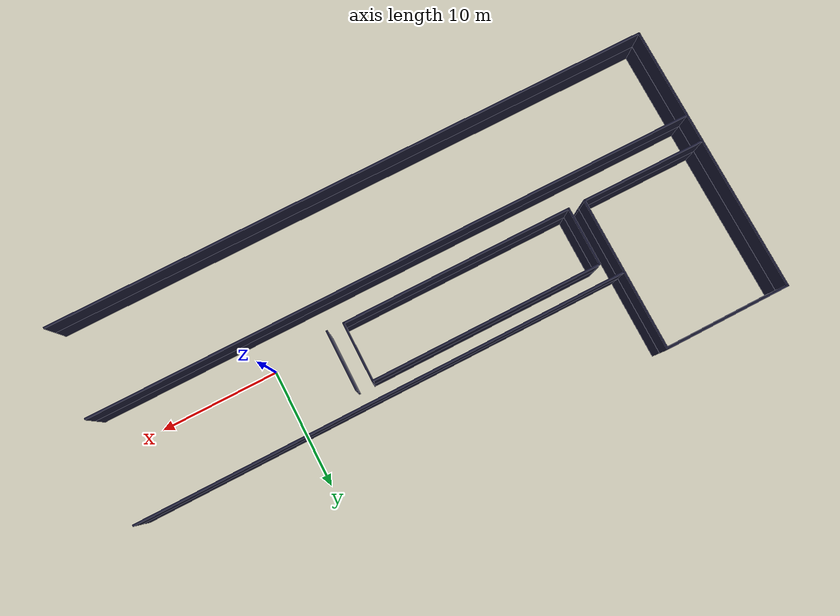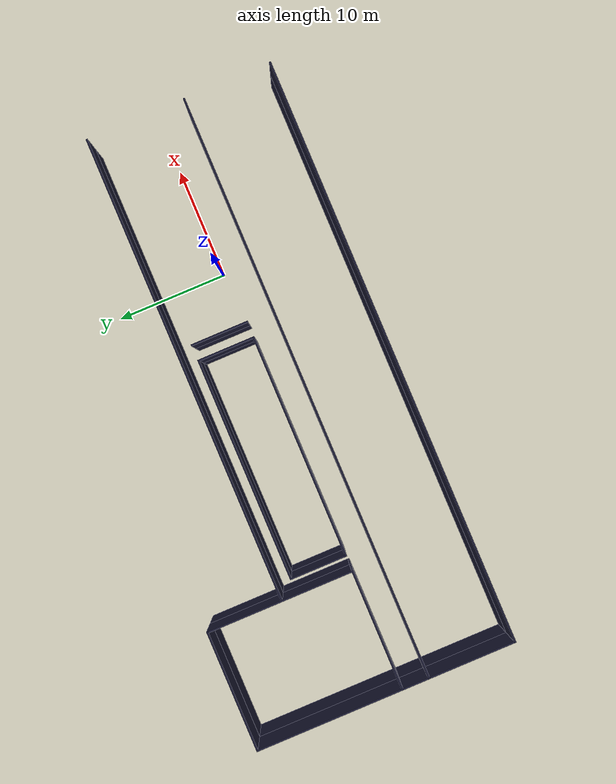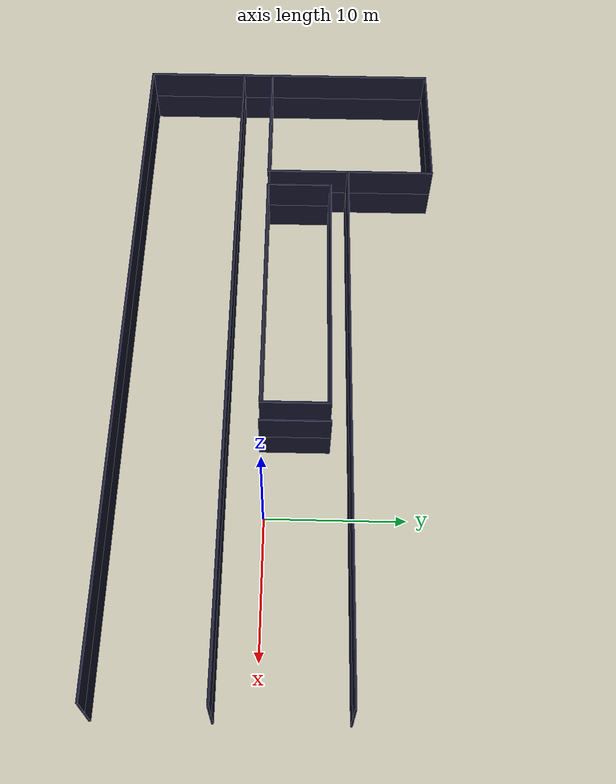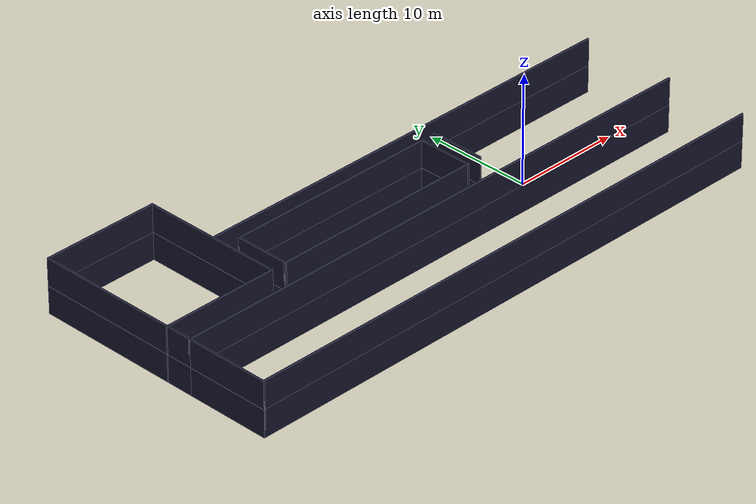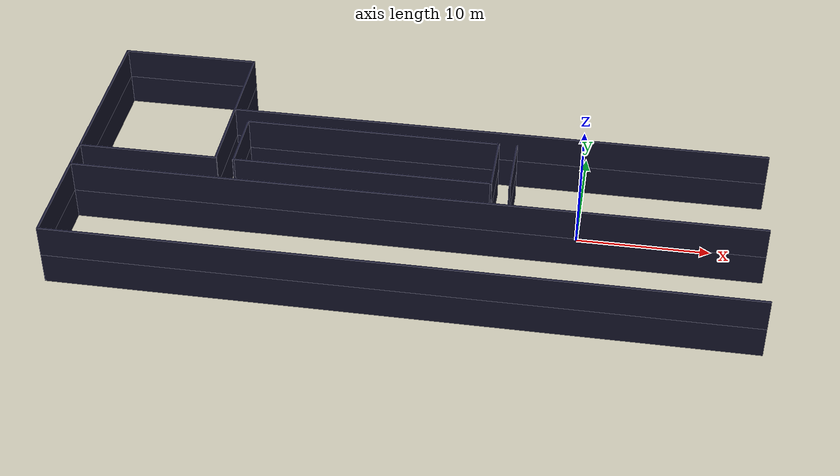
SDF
<sdf version="1.7">
 <model name="2ndo_andar_passarela_escadas_v4">
  <pose>-4.9719 -7.73678 0 0 -0 0</pose>
  <link name="Wall_0">
   <collision name="Wall_0_Collision">
    <geometry><box><size>52.3 0.15 2.5</size></box></geometry>
    <pose>0 0 1.25 0 -0 0</pose>
   </collision>
   <visual name="Wall_0_Visual">
    <pose>0 0 1.25 0 -0 0</pose>
    <geometry><box><size>52.3 0.15 2.5</size></box></geometry>
    <material>
     <script><uri>file://media/materials/scripts/gazebo.material</uri><name>Gazebo/Grey</name></script>
     <ambient>0.1 0.1 0.1 1</ambient>
     <diffuse>0.1 0.1 0.2 1</diffuse>
     <specular>0 0 0 0</specular>
     <emissive>0 0 0 1</emissive>
    </material>
    <meta><layer>0</layer></meta>
   </visual>
   <pose>-7.2999 -2.8 0 0 -0 0</pose>
  </link>
  <link name="Wall_118">
   <collision name="Wall_118_Collision">
    <geometry><box><size>13.2 0.15 2.5</size></box></geometry>
    <pose>0 0 1.25 0 -0 0</pose>
   </collision>
   <visual name="Wall_118_Visual">
    <pose>0 0 1.25 0 -0 0</pose>
    <geometry><box><size>13.2 0.15 2.5</size></box></geometry>
    <material>
     <script><uri>file://media/materials/scripts/gazebo.material</uri><name>Gazebo/Grey</name></script>
     <ambient>0.1 0.1 0.1 1</ambient>
     <diffuse>0.1 0.1 0.2 1</diffuse>
     <specular>0 0 0 0</specular>
     <emissive>0 0 0 1</emissive>
    </material>
    <meta><layer>0</layer></meta>
   </visual>
   <pose>-33.3749 13.875 0 0 -0 1.5708</pose>
  </link>
  <link name="Wall_120">
   <collision name="Wall_120_Collision">
    <geometry><box><size>10.8 0.15 2.5</size></box></geometry>
    <pose>0 0 1.25 0 -0 0</pose>
   </collision>
   <visual name="Wall_120_Visual">
    <pose>0 0 1.25 0 -0 0</pose>
    <geometry><box><size>10.8 0.15 2.5</size></box></geometry>
    <material>
     <script><uri>file://media/materials/scripts/gazebo.material</uri><name>Gazebo/Grey</name></script>
     <ambient>0.1 0.1 0.1 1</ambient>
     <diffuse>0.1 0.1 0.2 1</diffuse>
     <specular>0 0 0 0</specular>
     <emissive>0 0 0 1</emissive>
    </material>
    <meta><layer>0</layer></meta>
   </visual>
   <pose>-28.0499 20.4 0 0 -0 0</pose>
  </link>
  <link name="Wall_123">
   <collision name="Wall_123_Collision">
    <geometry><box><size>13.2 0.15 2.5</size></box></geometry>
    <pose>0 0 1.25 0 -0 0</pose>
   </collision>
   <visual name="Wall_123_Visual">
    <pose>0 0 1.25 0 -0 0</pose>
    <geometry><box><size>13.2 0.15 2.5</size></box></geometry>
    <material>
     <script><uri>file://media/materials/scripts/gazebo.material</uri><name>Gazebo/Grey</name></script>
     <ambient>0.1 0.1 0.1 1</ambient>
     <diffuse>0.1 0.1 0.2 1</diffuse>
     <specular>0 0 0 0</specular>
     <emissive>0 0 0 1</emissive>
    </material>
    <meta><layer>0</layer></meta>
   </visual>
   <pose>-22.7249 13.875 0 0 -0 -1.5708</pose>
  </link>
  <link name="Wall_125">
   <collision name="Wall_125_Collision">
    <geometry><box><size>10.8 0.15 2.5</size></box></geometry>
    <pose>0 0 1.25 0 -0 0</pose>
   </collision>
   <visual name="Wall_125_Visual">
    <pose>0 0 1.25 0 -0 0</pose>
    <geometry><box><size>10.8 0.15 2.5</size></box></geometry>
    <material>
     <script><uri>file://media/materials/scripts/gazebo.material</uri><name>Gazebo/Grey</name></script>
     <ambient>0.1 0.1 0.1 1</ambient>
     <diffuse>0.1 0.1 0.2 1</diffuse>
     <specular>0 0 0 0</specular>
     <emissive>0 0 0 1</emissive>
    </material>
    <meta><layer>0</layer></meta>
   </visual>
   <pose>-28.0499 7.35 0 0 -0 3.14159</pose>
  </link>
  <link name="Wall_129">
   <collision name="Wall_129_Collision">
    <geometry><box><size>19.8 0.15 2.5</size></box></geometry>
    <pose>0 0 1.25 0 -0 0</pose>
   </collision>
   <visual name="Wall_129_Visual">
    <pose>0 0 1.25 0 -0 0</pose>
    <geometry><box><size>19.8 0.15 2.5</size></box></geometry>
    <material>
     <script><uri>file://media/materials/scripts/gazebo.material</uri><name>Gazebo/Grey</name></script>
     <ambient>0.1 0.1 0.1 1</ambient>
     <diffuse>0.1 0.1 0.2 1</diffuse>
     <specular>0 0 0 0</specular>
     <emissive>0 0 0 1</emissive>
    </material>
    <meta><layer>0</layer></meta>
   </visual>
   <pose>-11.4999 7.35 0 0 -0 0</pose>
  </link>
  <link name="Wall_132">
   <collision name="Wall_132_Collision">
    <geometry><box><size>5.1 0.15 2.5</size></box></geometry>
    <pose>0 0 1.25 0 -0 0</pose>
   </collision>
   <visual name="Wall_132_Visual">
    <pose>0 0 1.25 0 -0 0</pose>
    <geometry><box><size>5.1 0.15 2.5</size></box></geometry>
    <material>
     <script><uri>file://media/materials/scripts/gazebo.material</uri><name>Gazebo/Grey</name></script>
     <ambient>0.1 0.1 0.1 1</ambient>
     <diffuse>0.1 0.1 0.2 1</diffuse>
     <specular>0 0 0 0</specular>
     <emissive>0 0 0 1</emissive>
    </material>
    <meta><layer>0</layer></meta>
   </visual>
   <pose>-1.6749 9.825 0 0 -0 1.5708</pose>
  </link>
  <link name="Wall_134">
   <collision name="Wall_134_Collision">
    <geometry><box><size>5.1 0.15 2.5</size></box></geometry>
    <pose>0 0 1.25 0 -0 0</pose>
   </collision>
   <visual name="Wall_134_Visual">
    <pose>0 0 1.25 0 -0 0</pose>
    <geometry><box><size>5.1 0.15 2.5</size></box></geometry>
    <material>
     <script><uri>file://media/materials/scripts/gazebo.material</uri><name>Gazebo/Grey</name></script>
     <ambient>0.1 0.1 0.1 1</ambient>
     <diffuse>0.1 0.1 0.2 1</diffuse>
     <specular>0 0 0 0</specular>
     <emissive>0 0 0 1</emissive>
    </material>
    <meta><layer>0</layer></meta>
   </visual>
   <pose>-21.3249 9.825 0 0 -0 1.5708</pose>
  </link>
  <link name="Wall_136">
   <collision name="Wall_136_Collision">
    <geometry><box><size>19.75 0.15 2.5</size></box></geometry>
    <pose>0 0 1.25 0 -0 0</pose>
   </collision>
   <visual name="Wall_136_Visual">
    <pose>0 0 1.25 0 -0 0</pose>
    <geometry><box><size>19.75 0.15 2.5</size></box></geometry>
    <material>
     <script><uri>file://media/materials/scripts/gazebo.material</uri><name>Gazebo/Grey</name></script>
     <ambient>0.1 0.1 0.1 1</ambient>
     <diffuse>0.1 0.1 0.2 1</diffuse>
     <specular>0 0 0 0</specular>
     <emissive>0 0 0 1</emissive>
    </material>
    <meta><layer>0</layer></meta>
   </visual>
   <pose>-11.5249 12.3 0 0 -0 0</pose>
  </link>
  <link name="Wall_142">
   <collision name="Wall_142_Collision">
    <geometry><box><size>5.1 0.15 2.5</size></box></geometry>
    <pose>0 0 1.25 0 -0 0</pose>
   </collision>
   <visual name="Wall_142_Visual">
    <pose>0 0 1.25 0 -0 0</pose>
    <geometry><box><size>5.1 0.15 2.5</size></box></geometry>
    <material>
     <script><uri>file://media/materials/scripts/gazebo.material</uri><name>Gazebo/Grey</name></script>
     <ambient>0.1 0.1 0.1 1</ambient>
     <diffuse>0.1 0.1 0.2 1</diffuse>
     <specular>0 0 0 0</specular>
     <emissive>0 0 0 1</emissive>
    </material>
    <meta><layer>0</layer></meta>
   </visual>
   <pose>-0.274901 9.825 0 0 -0 1.5708</pose>
  </link>
  <link name="Wall_146">
   <collision name="Wall_146_Collision">
    <geometry><box><size>41.5 0.15 2.5</size></box></geometry>
    <pose>0 0 1.25 0 -0 0</pose>
   </collision>
   <visual name="Wall_146_Visual">
    <pose>0 0 1.25 0 -0 0</pose>
    <geometry><box><size>41.5 0.15 2.5</size></box></geometry>
    <material>
     <script><uri>file://media/materials/scripts/gazebo.material</uri><name>Gazebo/Grey</name></script>
     <ambient>0.1 0.1 0.1 1</ambient>
     <diffuse>0.1 0.1 0.2 1</diffuse>
     <specular>0 0 0 0</specular>
     <emissive>0 0 0 1</emissive>
    </material>
    <meta><layer>0</layer></meta>
   </visual>
   <pose>-1.9001 13.6998 0 0 -0 3.14159</pose>
  </link>
  <link name="Wall_162">
   <collision name="Wall_162_Collision">
    <geometry><box><size>2.55 0.15 2.5</size></box></geometry>
    <pose>0 0 1.25 0 -0 0</pose>
   </collision>
   <visual name="Wall_162_Visual">
    <pose>0 0 1.25 0 -0 0</pose>
    <geometry><box><size>2.55 0.15 2.5</size></box></geometry>
    <material>
     <script><uri>file://media/materials/scripts/gazebo.material</uri><name>Gazebo/Grey</name></script>
     <ambient>0.1 0.1 0.1 1</ambient>
     <diffuse>0.1 0.1 0.2 1</diffuse>
     <specular>0 0 0 0</specular>
     <emissive>0 0 0 1</emissive>
    </material>
    <meta><layer>0</layer></meta>
   </visual>
   <pose>-33.3749 6.15 0 0 -0 -1.5708</pose>
  </link>
  <link name="Wall_216">
   <collision name="Wall_216_Collision">
    <geometry><box><size>52.3 0.15 2.5</size></box></geometry>
    <pose>0 0 1.25 0 -0 0</pose>
   </collision>
   <visual name="Wall_216_Visual">
    <pose>0 0 1.25 0 -0 0</pose>
    <geometry><box><size>52.3 0.15 2.5</size></box></geometry>
    <material>
     <script><uri>file://media/materials/scripts/gazebo.material</uri><name>Gazebo/Grey</name></script>
     <ambient>0.1 0.1 0.1 1</ambient>
     <diffuse>0.1 0.1 0.2 1</diffuse>
     <specular>0 0 0 0</specular>
     <emissive>0 0 0 1</emissive>
    </material>
    <meta><layer>1</layer></meta>
   </visual>
   <pose>-7.2999 -2.8 2.5 0 -0 0</pose>
  </link>
  <link name="Wall_218">
   <collision name="Wall_218_Collision">
    <geometry><box><size>52.3 0.15 2.5</size></box></geometry>
    <pose>0 0 1.25 0 -0 0</pose>
   </collision>
   <visual name="Wall_218_Visual">
    <pose>0 0 1.25 0 -0 0</pose>
    <geometry><box><size>52.3 0.15 2.5</size></box></geometry>
    <material>
     <script><uri>file://media/materials/scripts/gazebo.material</uri><name>Gazebo/Grey</name></script>
     <ambient>0.1 0.1 0.1 1</ambient>
     <diffuse>0.1 0.1 0.2 1</diffuse>
     <specular>0 0 0 0</specular>
     <emissive>0 0 0 1</emissive>
    </material>
    <meta><layer>1</layer></meta>
   </visual>
   <pose>-7.2999 4.95 2.5 0 -0 3.14159</pose>
  </link>
  <link name="Wall_219">
   <collision name="Wall_219_Collision">
    <geometry><box><size>7.9 0.15 2.5</size></box></geometry>
    <pose>0 0 1.25 0 -0 0</pose>
   </collision>
   <visual name="Wall_219_Visual">
    <pose>0 0 1.25 0 -0 0</pose>
    <geometry><box><size>7.9 0.15 2.5</size></box></geometry>
    <material>
     <script><uri>file://media/materials/scripts/gazebo.material</uri><name>Gazebo/Grey</name></script>
     <ambient>0.1 0.1 0.1 1</ambient>
     <diffuse>0.1 0.1 0.2 1</diffuse>
     <specular>0 0 0 0</specular>
     <emissive>0 0 0 1</emissive>
    </material>
    <meta><layer>1</layer></meta>
   </visual>
   <pose>-33.3749 1.075 2.5 0 -0 -1.5708</pose>
  </link>
  <link name="Wall_247">
   <collision name="Wall_247_Collision">
    <geometry><box><size>13.2 0.15 2.5</size></box></geometry>
    <pose>0 0 1.25 0 -0 0</pose>
   </collision>
   <visual name="Wall_247_Visual">
    <pose>0 0 1.25 0 -0 0</pose>
    <geometry><box><size>13.2 0.15 2.5</size></box></geometry>
    <material>
     <script><uri>file://media/materials/scripts/gazebo.material</uri><name>Gazebo/Grey</name></script>
     <ambient>0.1 0.1 0.1 1</ambient>
     <diffuse>0.1 0.1 0.2 1</diffuse>
     <specular>0 0 0 0</specular>
     <emissive>0 0 0 1</emissive>
    </material>
    <meta><layer>1</layer></meta>
   </visual>
   <pose>-33.3749 13.875 2.5 0 -0 1.5708</pose>
  </link>
  <link name="Wall_248">
   <collision name="Wall_248_Collision">
    <geometry><box><size>10.8 0.15 2.5</size></box></geometry>
    <pose>0 0 1.25 0 -0 0</pose>
   </collision>
   <visual name="Wall_248_Visual">
    <pose>0 0 1.25 0 -0 0</pose>
    <geometry><box><size>10.8 0.15 2.5</size></box></geometry>
    <material>
     <script><uri>file://media/materials/scripts/gazebo.material</uri><name>Gazebo/Grey</name></script>
     <ambient>0.1 0.1 0.1 1</ambient>
     <diffuse>0.1 0.1 0.2 1</diffuse>
     <specular>0 0 0 0</specular>
     <emissive>0 0 0 1</emissive>
    </material>
    <meta><layer>1</layer></meta>
   </visual>
   <pose>-28.0499 20.4 2.5 0 -0 0</pose>
  </link>
  <link name="Wall_249">
   <collision name="Wall_249_Collision">
    <geometry><box><size>13.2 0.15 2.5</size></box></geometry>
    <pose>0 0 1.25 0 -0 0</pose>
   </collision>
   <visual name="Wall_249_Visual">
    <pose>0 0 1.25 0 -0 0</pose>
    <geometry><box><size>13.2 0.15 2.5</size></box></geometry>
    <material>
     <script><uri>file://media/materials/scripts/gazebo.material</uri><name>Gazebo/Grey</name></script>
     <ambient>0.1 0.1 0.1 1</ambient>
     <diffuse>0.1 0.1 0.2 1</diffuse>
     <specular>0 0 0 0</specular>
     <emissive>0 0 0 1</emissive>
    </material>
    <meta><layer>1</layer></meta>
   </visual>
   <pose>-22.7249 13.875 2.5 0 -0 -1.5708</pose>
  </link>
  <link name="Wall_250">
   <collision name="Wall_250_Collision">
    <geometry><box><size>10.8 0.15 2.5</size></box></geometry>
    <pose>0 0 1.25 0 -0 0</pose>
   </collision>
   <visual name="Wall_250_Visual">
    <pose>0 0 1.25 0 -0 0</pose>
    <geometry><box><size>10.8 0.15 2.5</size></box></geometry>
    <material>
     <script><uri>file://media/materials/scripts/gazebo.material</uri><name>Gazebo/Grey</name></script>
     <ambient>0.1 0.1 0.1 1</ambient>
     <diffuse>0.1 0.1 0.2 1</diffuse>
     <specular>0 0 0 0</specular>
     <emissive>0 0 0 1</emissive>
    </material>
    <meta><layer>1</layer></meta>
   </visual>
   <pose>-28.0499 7.35 2.5 0 -0 3.14159</pose>
  </link>
  <link name="Wall_251">
   <collision name="Wall_251_Collision">
    <geometry><box><size>19.8 0.15 2.5</size></box></geometry>
    <pose>0 0 1.25 0 -0 0</pose>
   </collision>
   <visual name="Wall_251_Visual">
    <pose>0 0 1.25 0 -0 0</pose>
    <geometry><box><size>19.8 0.15 2.5</size></box></geometry>
    <material>
     <script><uri>file://media/materials/scripts/gazebo.material</uri><name>Gazebo/Grey</name></script>
     <ambient>0.1 0.1 0.1 1</ambient>
     <diffuse>0.1 0.1 0.2 1</diffuse>
     <specular>0 0 0 0</specular>
     <emissive>0 0 0 1</emissive>
    </material>
    <meta><layer>1</layer></meta>
   </visual>
   <pose>-11.4999 7.35 2.5 0 -0 0</pose>
  </link>
  <link name="Wall_252">
   <collision name="Wall_252_Collision">
    <geometry><box><size>5.1 0.15 2.5</size></box></geometry>
    <pose>0 0 1.25 0 -0 0</pose>
   </collision>
   <visual name="Wall_252_Visual">
    <pose>0 0 1.25 0 -0 0</pose>
    <geometry><box><size>5.1 0.15 2.5</size></box></geometry>
    <material>
     <script><uri>file://media/materials/scripts/gazebo.material</uri><name>Gazebo/Grey</name></script>
     <ambient>0.1 0.1 0.1 1</ambient>
     <diffuse>0.1 0.1 0.2 1</diffuse>
     <specular>0 0 0 0</specular>
     <emissive>0 0 0 1</emissive>
    </material>
    <meta><layer>1</layer></meta>
   </visual>
   <pose>-1.6749 9.825 2.5 0 -0 1.5708</pose>
  </link>
  <link name="Wall_253">
   <collision name="Wall_253_Collision">
    <geometry><box><size>5.1 0.15 2.5</size></box></geometry>
    <pose>0 0 1.25 0 -0 0</pose>
   </collision>
   <visual name="Wall_253_Visual">
    <pose>0 0 1.25 0 -0 0</pose>
    <geometry><box><size>5.1 0.15 2.5</size></box></geometry>
    <material>
     <script><uri>file://media/materials/scripts/gazebo.material</uri><name>Gazebo/Grey</name></script>
     <ambient>0.1 0.1 0.1 1</ambient>
     <diffuse>0.1 0.1 0.2 1</diffuse>
     <specular>0 0 0 0</specular>
     <emissive>0 0 0 1</emissive>
    </material>
    <meta><layer>1</layer></meta>
   </visual>
   <pose>-21.3249 9.825 2.5 0 -0 1.5708</pose>
  </link>
  <link name="Wall_254">
   <collision name="Wall_254_Collision">
    <geometry><box><size>19.75 0.15 2.5</size></box></geometry>
    <pose>0 0 1.25 0 -0 0</pose>
   </collision>
   <visual name="Wall_254_Visual">
    <pose>0 0 1.25 0 -0 0</pose>
    <geometry><box><size>19.75 0.15 2.5</size></box></geometry>
    <material>
     <script><uri>file://media/materials/scripts/gazebo.material</uri><name>Gazebo/Grey</name></script>
     <ambient>0.1 0.1 0.1 1</ambient>
     <diffuse>0.1 0.1 0.2 1</diffuse>
     <specular>0 0 0 0</specular>
     <emissive>0 0 0 1</emissive>
    </material>
    <meta><layer>1</layer></meta>
   </visual>
   <pose>-11.5249 12.3 2.5 0 -0 0</pose>
  </link>
  <link name="Wall_256">
   <collision name="Wall_256_Collision">
    <geometry><box><size>5.1 0.15 2.5</size></box></geometry>
    <pose>0 0 1.25 0 -0 0</pose>
   </collision>
   <visual name="Wall_256_Visual">
    <pose>0 0 1.25 0 -0 0</pose>
    <geometry><box><size>5.1 0.15 2.5</size></box></geometry>
    <material>
     <script><uri>file://media/materials/scripts/gazebo.material</uri><name>Gazebo/Grey</name></script>
     <ambient>0.1 0.1 0.1 1</ambient>
     <diffuse>0.1 0.1 0.2 1</diffuse>
     <specular>0 0 0 0</specular>
     <emissive>0 0 0 1</emissive>
    </material>
    <meta><layer>1</layer></meta>
   </visual>
   <pose>-0.274901 9.825 2.5 0 -0 1.5708</pose>
  </link>
  <link name="Wall_258">
   <collision name="Wall_258_Collision">
    <geometry><box><size>41.5 0.15 2.5</size></box></geometry>
    <pose>0 0 1.25 0 -0 0</pose>
   </collision>
   <visual name="Wall_258_Visual">
    <pose>0 0 1.25 0 -0 0</pose>
    <geometry><box><size>41.5 0.15 2.5</size></box></geometry>
    <material>
     <script><uri>file://media/materials/scripts/gazebo.material</uri><name>Gazebo/Grey</name></script>
     <ambient>0.1 0.1 0.1 1</ambient>
     <diffuse>0.1 0.1 0.2 1</diffuse>
     <specular>0 0 0 0</specular>
     <emissive>0 0 0 1</emissive>
    </material>
    <meta><layer>1</layer></meta>
   </visual>
   <pose>-1.9001 13.6998 2.5 0 -0 3.14159</pose>
  </link>
  <link name="Wall_264">
   <collision name="Wall_264_Collision">
    <geometry><box><size>2.55 0.15 2.5</size></box></geometry>
    <pose>0 0 1.25 0 -0 0</pose>
   </collision>
   <visual name="Wall_264_Visual">
    <pose>0 0 1.25 0 -0 0</pose>
    <geometry><box><size>2.55 0.15 2.5</size></box></geometry>
    <material>
     <script><uri>file://media/materials/scripts/gazebo.material</uri><name>Gazebo/Grey</name></script>
     <ambient>0.1 0.1 0.1 1</ambient>
     <diffuse>0.1 0.1 0.2 1</diffuse>
     <specular>0 0 0 0</specular>
     <emissive>0 0 0 1</emissive>
    </material>
    <meta><layer>1</layer></meta>
   </visual>
   <pose>-33.3749 6.15 2.5 0 -0 -1.5708</pose>
  </link>
  <link name="Wall_4">
   <collision name="Wall_4_Collision">
    <geometry><box><size>52.3 0.15 2.5</size></box></geometry>
    <pose>0 0 1.25 0 -0 0</pose>
   </collision>
   <visual name="Wall_4_Visual">
    <pose>0 0 1.25 0 -0 0</pose>
    <geometry><box><size>52.3 0.15 2.5</size></box></geometry>
    <material>
     <script><uri>file://media/materials/scripts/gazebo.material</uri><name>Gazebo/Grey</name></script>
     <ambient>0.1 0.1 0.1 1</ambient>
     <diffuse>0.1 0.1 0.2 1</diffuse>
     <specular>0 0 0 0</specular>
     <emissive>0 0 0 1</emissive>
    </material>
    <meta><layer>0</layer></meta>
   </visual>
   <pose>-7.2999 4.95 0 0 -0 3.14159</pose>
  </link>
  <link name="Wall_6">
   <collision name="Wall_6_Collision">
    <geometry><box><size>7.9 0.15 2.5</size></box></geometry>
    <pose>0 0 1.25 0 -0 0</pose>
   </collision>
   <visual name="Wall_6_Visual">
    <pose>0 0 1.25 0 -0 0</pose>
    <geometry><box><size>7.9 0.15 2.5</size></box></geometry>
    <material>
     <script><uri>file://media/materials/scripts/gazebo.material</uri><name>Gazebo/Grey</name></script>
     <ambient>0.1 0.1 0.1 1</ambient>
     <diffuse>0.1 0.1 0.2 1</diffuse>
     <specular>0 0 0 0</specular>
     <emissive>0 0 0 1</emissive>
    </material>
    <meta><layer>0</layer></meta>
   </visual>
   <pose>-33.3749 1.075 0 0 -0 -1.5708</pose>
  </link>
  <static>1</static>
 </model>
</sdf>
